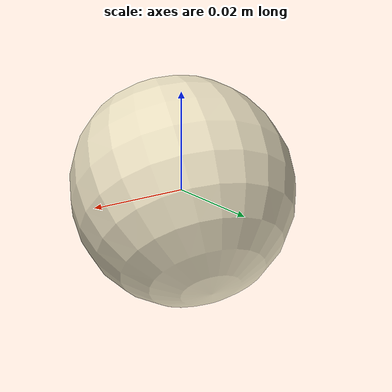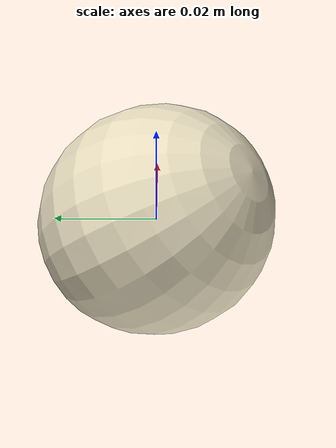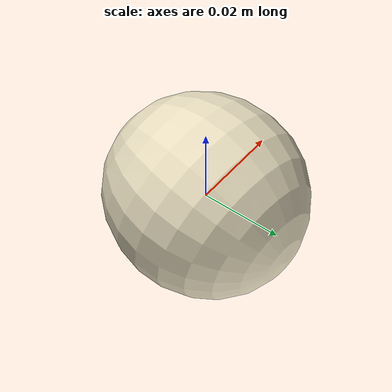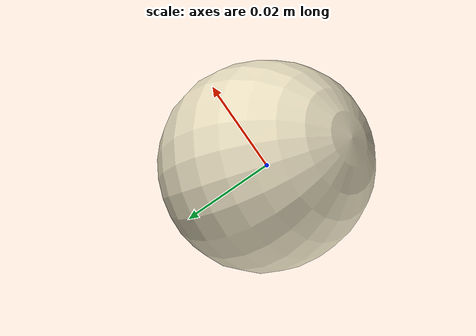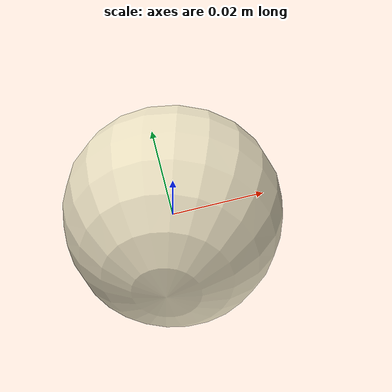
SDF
<?xml version="1.0"?>
<sdf version="1.7">
  <model name="cotton_pick_C_10">
    <static>false</static>
    <allow_auto_disable>false</allow_auto_disable>
    <link name="cotton_pick_C_10_link">
      <gravity>false</gravity>
      <self_collide>false</self_collide>
      <inertial>
        <mass>0.01200</mass>
        <inertia>
          <ixx>0.00000190</ixx>
          <iyy>0.00000190</iyy>
          <izz>0.00000190</izz>
          <ixy>0</ixy>
          <ixz>0</ixz>
          <iyz>0</iyz>
        </inertia>
      </inertial>
      <visual name="cotton_pick_C_10_visual">
        <geometry>
          <mesh>
            <uri>model://cotton_pick_C_10/meshes/cotton_pick_C_10.dae</uri>
          </mesh>
        </geometry>
      </visual>
      <collision name="cotton_pick_C_10_sphere_collision">
        <geometry>
          <sphere>
            <radius>0.01987</radius>
          </sphere>
        </geometry>
        <surface>
          <friction>
            <ode>
              <mu>1.6</mu>
              <mu2>1.6</mu2>
            </ode>
          </friction>
          <contact>
            <ode>
              <kp>8000</kp>
              <kd>80</kd>
            </ode>
          </contact>
        </surface>
      </collision>
    </link>
  </model>
</sdf>
